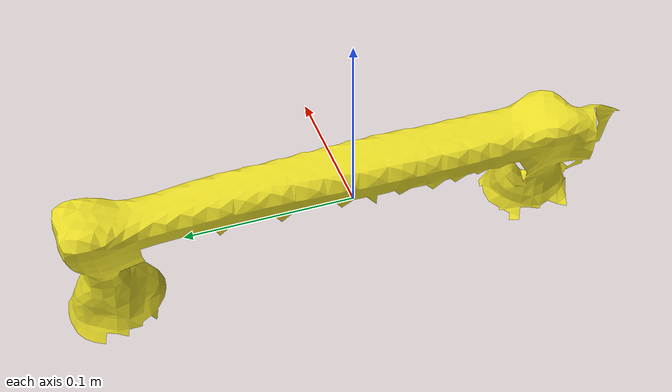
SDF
<?xml version="1.0" ?>
<sdf version='1.4'>
  <model name='handrail_model'>
    <link name='handrail'>
      <pose>0 0 0 0 -0 0</pose>
      <inertial>
        <pose>0 0.015 0 0 -0 0</pose>
        <mass>0.36</mass>
        <inertia>
          <ixx>1</ixx>
          <ixy>0</ixy>
          <ixz>0</ixz>
          <iyy>1</iyy>
          <iyz>0</iyz>
          <izz>1</izz>
        </inertia>
      </inertial>
      <collision name='handrail_collision'>
        <pose>0 0 0 1.57 -5.55112e-17 1.57</pose>
        <geometry>
          <mesh>
            <scale>1 1 1</scale>
            <uri>model://handrail//meshes//handrail.dae</uri>
          </mesh>
        </geometry>
        <surface>
          <contact>
            <ode/>
          </contact>
          <friction>
            <ode/>
          </friction>
        </surface>
      </collision>
      <visual name='handrail_visual'>
        <pose>0 0 0 1.57 -5.55112e-17 1.57</pose>
        <geometry>
          <mesh>
            <scale>1 1 1</scale>
            <uri>model://handrail//meshes//handrail.dae</uri>
          </mesh>
        </geometry>
        <material>
          <script>
            <name>Gazebo/Yellow</name>
            <uri>__default__</uri>
          </script>
        </material>
      </visual>
    </link>
  </model>
</sdf>
